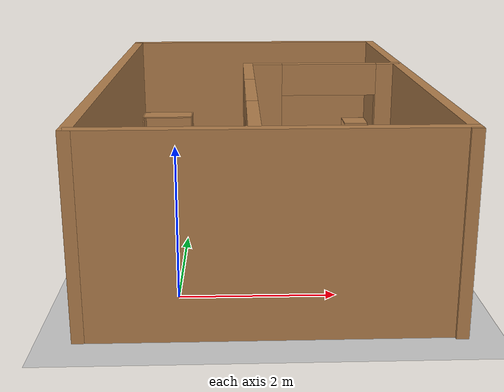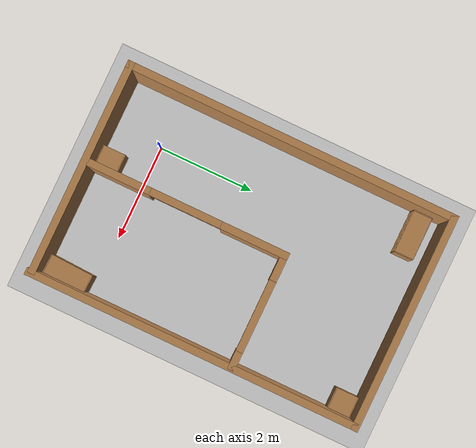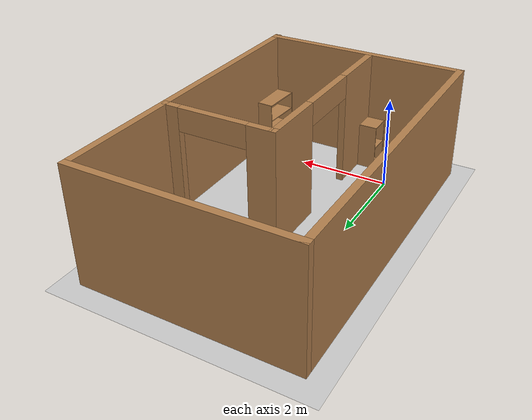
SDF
<sdf version="1.7">
 <world name="default">
  <light name="sun" type="directional">
   <pose>0 0 10 0 -0 0</pose>
   <diffuse>0.8 0.8 0.8 1</diffuse>
   <specular>0.2 0.2 0.2 1</specular>
   <attenuation>
    <range>1000</range>
    <constant>0.9</constant>
    <linear>0.01</linear>
    <quadratic>0.001</quadratic>
   </attenuation>
   <direction>-0.5 0.1 -0.9</direction>
   <spot><inner_angle>0</inner_angle><outer_angle>0</outer_angle><falloff>0</falloff></spot>
  </light>
  <model name="ground_plane">
   <static>1</static>
   <link name="link">
    <collision name="collision">
     <geometry><plane><normal>0 0 1</normal><size>100 100</size></plane></geometry>
     <surface><friction><ode><mu>100</mu><mu2>50</mu2></ode></friction></surface>
    </collision>
    <visual name="visual">
     <cast_shadows>0</cast_shadows>
     <geometry><plane><normal>0 0 1</normal><size>100 100</size></plane></geometry>
     <material>
      <script><uri>file://media/materials/scripts/gazebo.material</uri><name>Gazebo/Grey</name></script>
     </material>
    </visual>
   </link>
  </model>
  <gravity>0 0 -9.8</gravity>
  <magnetic_field>6e-06 2.3e-05 -4.2e-05</magnetic_field>
  <atmosphere type="adiabatic"/>
  <physics type="ode">
   <max_step_size>0.001</max_step_size>
   <real_time_factor>1</real_time_factor>
   <real_time_update_rate>1000</real_time_update_rate>
  </physics>
  <scene><ambient>0.4 0.4 0.4 1</ambient><background>0.7 0.7 0.7 1</background><shadows>1</shadows></scene>
  <spherical_coordinates>
   <surface_model>EARTH_WGS84</surface_model>
   <latitude_deg>0</latitude_deg>
   <longitude_deg>0</longitude_deg>
   <elevation>0</elevation>
   <heading_deg>0</heading_deg>
  </spherical_coordinates>
  <model name="Office_Udacity2">
   <pose>4.11035 2.32771 0 0 -0 0</pose>
   <link name="Wall_0">
    <collision name="Wall_0_Collision">
     <geometry><box><size>7 0.15 2.5</size></box></geometry>
     <pose>0 0 1.25 0 -0 0</pose>
    </collision>
    <visual name="Wall_0_Visual">
     <pose>0 0 1.25 0 -0 0</pose>
     <geometry><box><size>7 0.15 2.5</size></box></geometry>
     <material>
      <script><uri>file://media/materials/scripts/gazebo.material</uri><name>Gazebo/Wood</name></script>
      <ambient>1 1 1 1</ambient>
     </material>
     <meta><layer>0</layer></meta>
    </visual>
    <pose>-5.18899 0.020228 0 0 -0 -1.5708</pose>
   </link>
   <link name="Wall_1">
    <collision name="Wall_1_Collision">
     <geometry><box><size>4.55813 0.15 2.5</size></box></geometry>
     <pose>0 0 1.25 0 -0 0</pose>
    </collision>
    <visual name="Wall_1_Visual">
     <pose>0 0 1.25 0 -0 0</pose>
     <geometry><box><size>4.55813 0.15 2.5</size></box></geometry>
     <material>
      <script><uri>file://media/materials/scripts/gazebo.material</uri><name>Gazebo/Wood</name></script>
      <ambient>1 1 1 1</ambient>
     </material>
     <meta><layer>0</layer></meta>
    </visual>
    <pose>-2.98493 -3.40477 0 0 -0 0</pose>
   </link>
   <link name="Wall_2">
    <collision name="Wall_2_Collision">
     <geometry><box><size>7 0.15 2.5</size></box></geometry>
     <pose>0 0 1.25 0 -0 0</pose>
    </collision>
    <visual name="Wall_2_Visual">
     <pose>0 0 1.25 0 -0 0</pose>
     <geometry><box><size>7 0.15 2.5</size></box></geometry>
     <material>
      <script><uri>file://media/materials/scripts/gazebo.material</uri><name>Gazebo/Wood</name></script>
      <ambient>1 1 1 1</ambient>
     </material>
     <meta><layer>0</layer></meta>
    </visual>
    <pose>-0.780861 -0.020228 0 0 -0 1.5708</pose>
   </link>
   <link name="Wall_3">
    <collision name="Wall_3_Collision">
     <geometry><box><size>4.55813 0.15 2.5</size></box></geometry>
     <pose>0 0 1.25 0 -0 0</pose>
    </collision>
    <visual name="Wall_3_Visual">
     <pose>0 0 1.25 0 -0 0</pose>
     <geometry><box><size>4.55813 0.15 2.5</size></box></geometry>
     <material>
      <script><uri>file://media/materials/scripts/gazebo.material</uri><name>Gazebo/Wood</name></script>
      <ambient>1 1 1 1</ambient>
     </material>
     <meta><layer>0</layer></meta>
    </visual>
    <pose>-2.98493 3.44523 0 0 -0 3.14159</pose>
   </link>
   <link name="Wall_6">
    <pose>-3.16621 -1.2204 0 0 -0 1.5708</pose>
    <visual name="Wall_6_Visual_0">
     <pose>-1.46155 0 1.25 0 -0 0</pose>
     <geometry><box><size>1.3269 0.15 2.5</size></box></geometry>
     <material>
      <script><uri>file://media/materials/scripts/gazebo.material</uri><name>Gazebo/Wood</name></script>
      <ambient>1 1 1 1</ambient>
     </material>
     <meta><layer>0</layer></meta>
    </visual>
    <collision name="Wall_6_Collision_0">
     <geometry><box><size>1.3269 0.15 2.5</size></box></geometry>
     <pose>-1.46155 0 1.25 0 -0 0</pose>
    </collision>
    <visual name="Wall_6_Visual_1">
     <pose>1.41345 0 1.25 0 -0 0</pose>
     <geometry><box><size>1.4231 0.15 2.5</size></box></geometry>
     <material>
      <script><uri>file://media/materials/scripts/gazebo.material</uri><name>Gazebo/Wood</name></script>
      <ambient>1 1 1 1</ambient>
     </material>
     <meta><layer>0</layer></meta>
    </visual>
    <collision name="Wall_6_Collision_1">
     <geometry><box><size>1.4231 0.15 2.5</size></box></geometry>
     <pose>1.41345 0 1.25 0 -0 0</pose>
    </collision>
    <visual name="Wall_6_Visual_2">
     <pose>-0.048102 0 2.25 0 -0 0</pose>
     <geometry><box><size>1.5 0.15 0.5</size></box></geometry>
     <material>
      <script><uri>file://media/materials/scripts/gazebo.material</uri><name>Gazebo/Wood</name></script>
      <ambient>1 1 1 1</ambient>
     </material>
     <meta><layer>0</layer></meta>
    </visual>
    <collision name="Wall_6_Collision_2">
     <geometry><box><size>1.5 0.15 0.5</size></box></geometry>
     <pose>-0.048102 0 2.25 0 -0 0</pose>
    </collision>
   </link>
   <link name="Wall_7">
    <pose>-1.99121 0.829602 0 0 -0 0</pose>
    <visual name="Wall_7_Visual_0">
     <pose>-0.941895 0 1.25 0 -0 0</pose>
     <geometry><box><size>0.616209 0.15 2.5</size></box></geometry>
     <material>
      <script><uri>file://media/materials/scripts/gazebo.material</uri><name>Gazebo/Wood</name></script>
      <ambient>1 1 1 1</ambient>
     </material>
     <meta><layer>0</layer></meta>
    </visual>
    <collision name="Wall_7_Collision_0">
     <geometry><box><size>0.616209 0.15 2.5</size></box></geometry>
     <pose>-0.941895 0 1.25 0 -0 0</pose>
    </collision>
    <visual name="Wall_7_Visual_1">
     <pose>1.05811 0 1.25 0 -0 0</pose>
     <geometry><box><size>0.383791 0.15 2.5</size></box></geometry>
     <material>
      <script><uri>file://media/materials/scripts/gazebo.material</uri><name>Gazebo/Wood</name></script>
      <ambient>1 1 1 1</ambient>
     </material>
     <meta><layer>0</layer></meta>
    </visual>
    <collision name="Wall_7_Collision_1">
     <geometry><box><size>0.383791 0.15 2.5</size></box></geometry>
     <pose>1.05811 0 1.25 0 -0 0</pose>
    </collision>
    <visual name="Wall_7_Visual_2">
     <pose>0.116209 0 2.25 0 -0 0</pose>
     <geometry><box><size>1.5 0.15 0.5</size></box></geometry>
     <material>
      <script><uri>file://media/materials/scripts/gazebo.material</uri><name>Gazebo/Wood</name></script>
      <ambient>1 1 1 1</ambient>
     </material>
     <meta><layer>0</layer></meta>
    </visual>
    <collision name="Wall_7_Collision_2">
     <geometry><box><size>1.5 0.15 0.5</size></box></geometry>
     <pose>0.116209 0 2.25 0 -0 0</pose>
    </collision>
   </link>
   <static>1</static>
  </model>
  <model name="bookshelf">
   <static>1</static>
   <link name="link">
    <inertial><mass>1</mass></inertial>
    <collision name="back">
     <pose>0 0.005 0.6 0 -0 0</pose>
     <geometry><box><size>0.9 0.01 1.2</size></box></geometry>
    </collision>
    <visual name="visual1">
     <pose>0 0.005 0.6 0 -0 0</pose>
     <geometry><box><size>0.9 0.01 1.2</size></box></geometry>
     <material>
      <script><uri>file://media/materials/scripts/gazebo.material</uri><name>Gazebo/Wood</name></script>
     </material>
    </visual>
    <collision name="left_side">
     <pose>0.45 -0.195 0.6 0 -0 0</pose>
     <geometry><box><size>0.02 0.4 1.2</size></box></geometry>
    </collision>
    <visual name="visual2">
     <pose>0.45 -0.195 0.6 0 -0 0</pose>
     <geometry><box><size>0.02 0.4 1.2</size></box></geometry>
     <material>
      <script><uri>file://media/materials/scripts/gazebo.material</uri><name>Gazebo/Wood</name></script>
     </material>
    </visual>
    <collision name="right_side">
     <pose>-0.45 -0.195 0.6 0 -0 0</pose>
     <geometry><box><size>0.02 0.4 1.2</size></box></geometry>
    </collision>
    <visual name="visual3">
     <pose>-0.45 -0.195 0.6 0 -0 0</pose>
     <geometry><box><size>0.02 0.4 1.2</size></box></geometry>
     <material>
      <script><uri>file://media/materials/scripts/gazebo.material</uri><name>Gazebo/Wood</name></script>
     </material>
    </visual>
    <collision name="bottom">
     <pose>0 -0.195 0.03 0 -0 0</pose>
     <geometry><box><size>0.88 0.4 0.06</size></box></geometry>
    </collision>
    <visual name="visual4">
     <pose>0 -0.195 0.03 0 -0 0</pose>
     <geometry><box><size>0.88 0.4 0.06</size></box></geometry>
     <material>
      <script><uri>file://media/materials/scripts/gazebo.material</uri><name>Gazebo/Wood</name></script>
     </material>
    </visual>
    <collision name="top">
     <pose>0 -0.195 1.19 0 -0 0</pose>
     <geometry><box><size>0.88 0.4 0.02</size></box></geometry>
    </collision>
    <visual name="visual5">
     <pose>0 -0.195 1.19 0 -0 0</pose>
     <geometry><box><size>0.88 0.4 0.02</size></box></geometry>
     <material>
      <script><uri>file://media/materials/scripts/gazebo.material</uri><name>Gazebo/Wood</name></script>
     </material>
    </visual>
    <collision name="low_shelf">
     <pose>0 -0.195 0.43 0 -0 0</pose>
     <geometry><box><size>0.88 0.4 0.02</size></box></geometry>
    </collision>
    <visual name="visual6">
     <pose>0 -0.195 0.43 0 -0 0</pose>
     <geometry><box><size>0.88 0.4 0.02</size></box></geometry>
     <material>
      <script><uri>file://media/materials/scripts/gazebo.material</uri><name>Gazebo/Wood</name></script>
     </material>
    </visual>
    <collision name="high_shelf">
     <pose>0 -0.195 0.8 0 -0 0</pose>
     <geometry><box><size>0.88 0.4 0.02</size></box></geometry>
    </collision>
    <visual name="visual7">
     <pose>0 -0.195 0.8 0 -0 0</pose>
     <geometry><box><size>0.88 0.4 0.02</size></box></geometry>
     <material>
      <script><uri>file://media/materials/scripts/gazebo.material</uri><name>Gazebo/Wood</name></script>
     </material>
    </visual>
   </link>
   <pose>3.26962 -0.542089 0 0 -0 -1.614</pose>
  </model>
  <model name="cabinet">
   <static>1</static>
   <link name="cabinet_bottom_plate">
    <inertial>
     <pose>0 0 -1 0 -0 0</pose>
     <inertia><ixx>2.05</ixx><ixy>0</ixy><ixz>0</ixz><iyy>2.05</iyy><iyz>0</iyz><izz>2.05</izz></inertia>
     <mass>25</mass>
    </inertial>
    <collision name="cabinet_bottom_plate_geom">
     <pose>0 0 0.01 0 -0 0</pose>
     <geometry><box><size>0.45 0.45 0.02</size></box></geometry>
    </collision>
    <visual name="cabinet_bottom_plate_geom_visual">
     <pose>0 0 0.01 0 -0 0</pose>
     <geometry><box><size>0.45 0.45 0.02</size></box></geometry>
     <material>
      <script><uri>file://media/materials/scripts/gazebo.material</uri><name>Gazebo/Wood</name></script>
     </material>
    </visual>
    <collision name="cabinet_bottom_plate_geom_cabinet_back_plate">
     <pose>0.235 0 0.51 0 -0 0</pose>
     <geometry><box><size>0.02 0.45 1.02</size></box></geometry>
    </collision>
    <visual name="cabinet_bottom_plate_geom_cabinet_back_plate_visual">
     <pose>0.235 0 0.51 0 -0 0</pose>
     <geometry><box><size>0.02 0.45 1.02</size></box></geometry>
     <material>
      <script><uri>file://media/materials/scripts/gazebo.material</uri><name>Gazebo/Wood</name></script>
     </material>
    </visual>
    <collision name="cabinet_bottom_plate_geom_cabinet_left_plate">
     <pose>0 0.235 0.51 0 -0 0</pose>
     <geometry><box><size>0.45 0.02 1.02</size></box></geometry>
    </collision>
    <visual name="cabinet_bottom_plate_geom_cabinet_left_plate_visual">
     <pose>0 0.235 0.51 0 -0 0</pose>
     <geometry><box><size>0.45 0.02 1.02</size></box></geometry>
     <material>
      <script><uri>file://media/materials/scripts/gazebo.material</uri><name>Gazebo/Wood</name></script>
     </material>
    </visual>
    <collision name="cabinet_bottom_plate_geom_cabinet_middle_plate">
     <pose>0 0 0.51 0 -0 0</pose>
     <geometry><box><size>0.45 0.45 0.02</size></box></geometry>
    </collision>
    <visual name="cabinet_bottom_plate_geom_cabinet_middle_plate_visual">
     <pose>0 0 0.51 0 -0 0</pose>
     <geometry><box><size>0.45 0.45 0.02</size></box></geometry>
     <material>
      <script><uri>file://media/materials/scripts/gazebo.material</uri><name>Gazebo/Wood</name></script>
     </material>
    </visual>
    <collision name="cabinet_bottom_plate_geom_cabinet_right_plate">
     <pose>0 -0.235 0.51 0 -0 0</pose>
     <geometry><box><size>0.45 0.02 1.02</size></box></geometry>
    </collision>
    <visual name="cabinet_bottom_plate_geom_cabinet_right_plate_visual">
     <pose>0 -0.235 0.51 0 -0 0</pose>
     <geometry><box><size>0.45 0.02 1.02</size></box></geometry>
     <material>
      <script><uri>file://media/materials/scripts/gazebo.material</uri><name>Gazebo/Wood</name></script>
     </material>
    </visual>
    <collision name="cabinet_bottom_plate_geom_cabinet_top_plate">
     <pose>0 0 1.01 0 -0 0</pose>
     <geometry><box><size>0.45 0.45 0.02</size></box></geometry>
    </collision>
    <visual name="cabinet_bottom_plate_geom_cabinet_top_plate_visual">
     <pose>0 0 1.01 0 -0 0</pose>
     <geometry><box><size>0.45 0.45 0.02</size></box></geometry>
     <material>
      <script><uri>file://media/materials/scripts/gazebo.material</uri><name>Gazebo/Wood</name></script>
     </material>
    </visual>
   </link>
   <pose>3.04627 5.44648 0 0 -0 0</pose>
  </model>
  <model name="cabinet_0">
   <static>1</static>
   <link name="cabinet_bottom_plate">
    <inertial>
     <pose>0 0 -1 0 -0 0</pose>
     <inertia><ixx>2.05</ixx><ixy>0</ixy><ixz>0</ixz><iyy>2.05</iyy><iyz>0</iyz><izz>2.05</izz></inertia>
     <mass>25</mass>
    </inertial>
    <collision name="cabinet_bottom_plate_geom">
     <pose>0 0 0.01 0 -0 0</pose>
     <geometry><box><size>0.45 0.45 0.02</size></box></geometry>
    </collision>
    <visual name="cabinet_bottom_plate_geom_visual">
     <pose>0 0 0.01 0 -0 0</pose>
     <geometry><box><size>0.45 0.45 0.02</size></box></geometry>
     <material>
      <script><uri>file://media/materials/scripts/gazebo.material</uri><name>Gazebo/Wood</name></script>
     </material>
    </visual>
    <collision name="cabinet_bottom_plate_geom_cabinet_back_plate">
     <pose>0.235 0 0.51 0 -0 0</pose>
     <geometry><box><size>0.02 0.45 1.02</size></box></geometry>
    </collision>
    <visual name="cabinet_bottom_plate_geom_cabinet_back_plate_visual">
     <pose>0.235 0 0.51 0 -0 0</pose>
     <geometry><box><size>0.02 0.45 1.02</size></box></geometry>
     <material>
      <script><uri>file://media/materials/scripts/gazebo.material</uri><name>Gazebo/Wood</name></script>
     </material>
    </visual>
    <collision name="cabinet_bottom_plate_geom_cabinet_left_plate">
     <pose>0 0.235 0.51 0 -0 0</pose>
     <geometry><box><size>0.45 0.02 1.02</size></box></geometry>
    </collision>
    <visual name="cabinet_bottom_plate_geom_cabinet_left_plate_visual">
     <pose>0 0.235 0.51 0 -0 0</pose>
     <geometry><box><size>0.45 0.02 1.02</size></box></geometry>
     <material>
      <script><uri>file://media/materials/scripts/gazebo.material</uri><name>Gazebo/Wood</name></script>
     </material>
    </visual>
    <collision name="cabinet_bottom_plate_geom_cabinet_middle_plate">
     <pose>0 0 0.51 0 -0 0</pose>
     <geometry><box><size>0.45 0.45 0.02</size></box></geometry>
    </collision>
    <visual name="cabinet_bottom_plate_geom_cabinet_middle_plate_visual">
     <pose>0 0 0.51 0 -0 0</pose>
     <geometry><box><size>0.45 0.45 0.02</size></box></geometry>
     <material>
      <script><uri>file://media/materials/scripts/gazebo.material</uri><name>Gazebo/Wood</name></script>
     </material>
    </visual>
    <collision name="cabinet_bottom_plate_geom_cabinet_right_plate">
     <pose>0 -0.235 0.51 0 -0 0</pose>
     <geometry><box><size>0.45 0.02 1.02</size></box></geometry>
    </collision>
    <visual name="cabinet_bottom_plate_geom_cabinet_right_plate_visual">
     <pose>0 -0.235 0.51 0 -0 0</pose>
     <geometry><box><size>0.45 0.02 1.02</size></box></geometry>
     <material>
      <script><uri>file://media/materials/scripts/gazebo.material</uri><name>Gazebo/Wood</name></script>
     </material>
    </visual>
    <collision name="cabinet_bottom_plate_geom_cabinet_top_plate">
     <pose>0 0 1.01 0 -0 0</pose>
     <geometry><box><size>0.45 0.45 0.02</size></box></geometry>
    </collision>
    <visual name="cabinet_bottom_plate_geom_cabinet_top_plate_visual">
     <pose>0 0 1.01 0 -0 0</pose>
     <geometry><box><size>0.45 0.45 0.02</size></box></geometry>
     <material>
      <script><uri>file://media/materials/scripts/gazebo.material</uri><name>Gazebo/Wood</name></script>
     </material>
    </visual>
   </link>
   <pose>0.693442 -0.76072 0 0 -0 0</pose>
  </model>
  <model name="bookshelf_0">
   <static>1</static>
   <link name="link">
    <inertial><mass>1</mass></inertial>
    <collision name="back">
     <pose>0 0.005 0.6 0 -0 0</pose>
     <geometry><box><size>0.9 0.01 1.2</size></box></geometry>
    </collision>
    <visual name="visual1">
     <pose>0 0.005 0.6 0 -0 0</pose>
     <geometry><box><size>0.9 0.01 1.2</size></box></geometry>
     <material>
      <script><uri>file://media/materials/scripts/gazebo.material</uri><name>Gazebo/Wood</name></script>
     </material>
    </visual>
    <collision name="left_side">
     <pose>0.45 -0.195 0.6 0 -0 0</pose>
     <geometry><box><size>0.02 0.4 1.2</size></box></geometry>
    </collision>
    <visual name="visual2">
     <pose>0.45 -0.195 0.6 0 -0 0</pose>
     <geometry><box><size>0.02 0.4 1.2</size></box></geometry>
     <material>
      <script><uri>file://media/materials/scripts/gazebo.material</uri><name>Gazebo/Wood</name></script>
     </material>
    </visual>
    <collision name="right_side">
     <pose>-0.45 -0.195 0.6 0 -0 0</pose>
     <geometry><box><size>0.02 0.4 1.2</size></box></geometry>
    </collision>
    <visual name="visual3">
     <pose>-0.45 -0.195 0.6 0 -0 0</pose>
     <geometry><box><size>0.02 0.4 1.2</size></box></geometry>
     <material>
      <script><uri>file://media/materials/scripts/gazebo.material</uri><name>Gazebo/Wood</name></script>
     </material>
    </visual>
    <collision name="bottom">
     <pose>0 -0.195 0.03 0 -0 0</pose>
     <geometry><box><size>0.88 0.4 0.06</size></box></geometry>
    </collision>
    <visual name="visual4">
     <pose>0 -0.195 0.03 0 -0 0</pose>
     <geometry><box><size>0.88 0.4 0.06</size></box></geometry>
     <material>
      <script><uri>file://media/materials/scripts/gazebo.material</uri><name>Gazebo/Wood</name></script>
     </material>
    </visual>
    <collision name="top">
     <pose>0 -0.195 1.19 0 -0 0</pose>
     <geometry><box><size>0.88 0.4 0.02</size></box></geometry>
    </collision>
    <visual name="visual5">
     <pose>0 -0.195 1.19 0 -0 0</pose>
     <geometry><box><size>0.88 0.4 0.02</size></box></geometry>
     <material>
      <script><uri>file://media/materials/scripts/gazebo.material</uri><name>Gazebo/Wood</name></script>
     </material>
    </visual>
    <collision name="low_shelf">
     <pose>0 -0.195 0.43 0 -0 0</pose>
     <geometry><box><size>0.88 0.4 0.02</size></box></geometry>
    </collision>
    <visual name="visual6">
     <pose>0 -0.195 0.43 0 -0 0</pose>
     <geometry><box><size>0.88 0.4 0.02</size></box></geometry>
     <material>
      <script><uri>file://media/materials/scripts/gazebo.material</uri><name>Gazebo/Wood</name></script>
     </material>
    </visual>
    <collision name="high_shelf">
     <pose>0 -0.195 0.8 0 -0 0</pose>
     <geometry><box><size>0.88 0.4 0.02</size></box></geometry>
    </collision>
    <visual name="visual7">
     <pose>0 -0.195 0.8 0 -0 0</pose>
     <geometry><box><size>0.88 0.4 0.02</size></box></geometry>
     <material>
      <script><uri>file://media/materials/scripts/gazebo.material</uri><name>Gazebo/Wood</name></script>
     </material>
    </visual>
   </link>
   <pose>-0.531316 5.47276 0 0 -0 0</pose>
  </model>
 </world>
</sdf>
